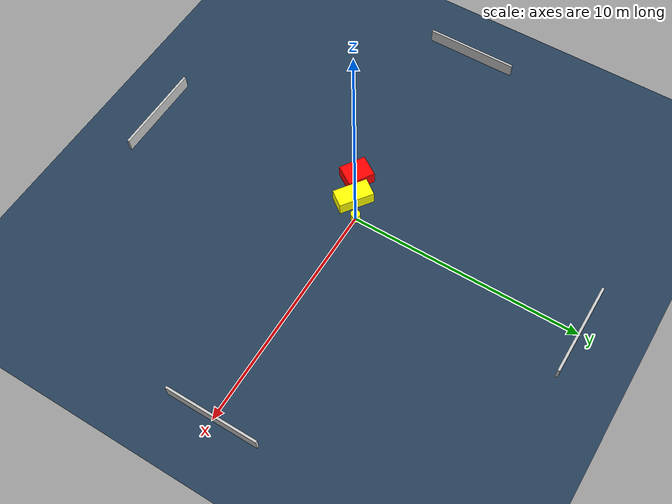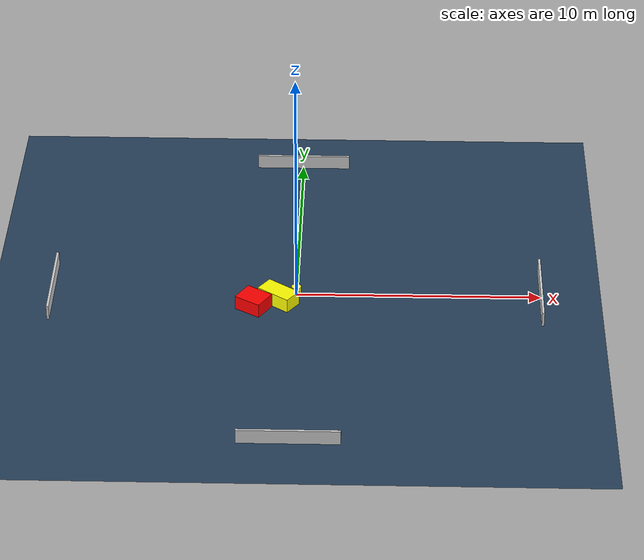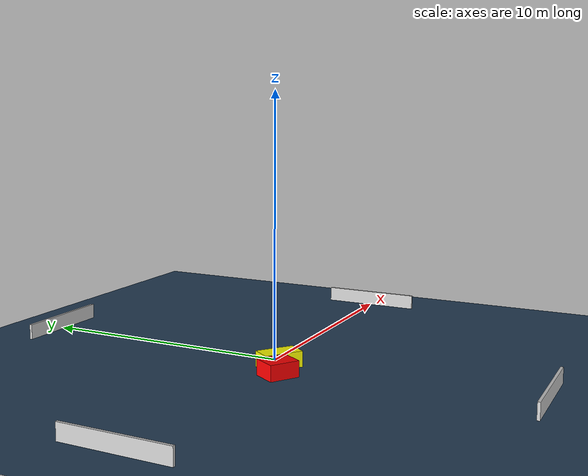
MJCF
<?xml version="1.0" ?>
<mujoco model="generated_environment">
  <option timestep="0.01" integrator="RK4" cone="elliptic"/>
  <default>
    <geom density="1"/>
  </default>
  <asset>
    <texture builtin="gradient" height="3072" name="skybox" rgb1="0.3 0.5 0.7" rgb2="0 0 0" type="skybox" width="512"/>
    <texture builtin="checker" height="300" name="groundplane" rgb1="0.2 0.3 0.4" rgb2="0.1 0.2 0.3" type="2d" width="300"/>
    <material name="groundplane" reflectance="0.2" texrepeat="5 5" texture="groundplane"/>
  </asset>
  <worldbody>
    <light dir="0 0 -1" directional="true" pos="0 0 1.5"/>
    <geom condim="3" friction="0.5 0.005 0.001" material="groundplane" name="floor" pos="0 0 0" size="0 0 0.05" type="plane"/>
    <body name="walls">
      <geom name="wall_1" condim="4" pos="-10.0 0.0 0.3" rgba="0.800000011920929 0.800000011920929 0.800000011920929 1.0" size="0.05 2.0 0.3" type="box"/>
      <geom name="wall_2" condim="4" pos="10.0 0.0 0.3" rgba="0.800000011920929 0.800000011920929 0.800000011920929 1.0" size="0.05 2.0 0.3" type="box"/>
      <geom name="wall_3" condim="4" pos="0.0 -10.0 0.3" rgba="0.800000011920929 0.800000011920929 0.800000011920929 1.0" size="2.0 0.05 0.3" type="box"/>
      <geom name="wall_4" condim="4" pos="0.0 10.0 0.3" rgba="0.800000011920929 0.800000011920929 0.800000011920929 1.0" size="2.0 0.05 0.3" type="box"/>
    </body>
    <body name="robot">
      <joint name="joint_x" type="slide" pos="0 0 0" axis="1 0 0"/>
      <joint name="joint_y" type="slide" pos="0 0 0" axis="0 1 0"/>
      <geom name="robot" type="cylinder" pos="0.0 0.0 0.2" size="0.2 0.2 0.0" mass="5.0" friction="1.0 0.005 0.0001" condim="4" rgba="1.0 1.0 0.0 1.0"/>
    </body>
    <body name="obstacle_1_movable">
      <geom name="obstacle_1_movable" condim="4" pos="-0.7200880190555228 -0.5426578673824201 0.3" euler="0 0 233.9791566739747" friction="0.0 0.005 0.001" rgba="1.0 1.0 0.0 1.0" size="0.39420020908814146 0.7557982982711355 0.3" type="box" mass="0.1"/>
      <joint type="free"/>
    </body>
    <body name="obstacle_2_static">
      <geom name="obstacle_2_static" condim="4" pos="-1.7158070123605118 -0.9800056263951565 0.3" euler="0 0 147.7023758725331" friction="0.0 0.005 0.001" rgba="1.0 0.0 0.0 1.0" size="0.5829433583321338 0.474635330264258 0.3" type="box"/>
    </body>
  </worldbody>
  <actuator>
    <motor name="actuator_x" joint="joint_x" gear="1" ctrlrange="-1 1"/>
    <motor name="actuator_y" joint="joint_y" gear="1" ctrlrange="-1 1"/>
  </actuator>
</mujoco>
